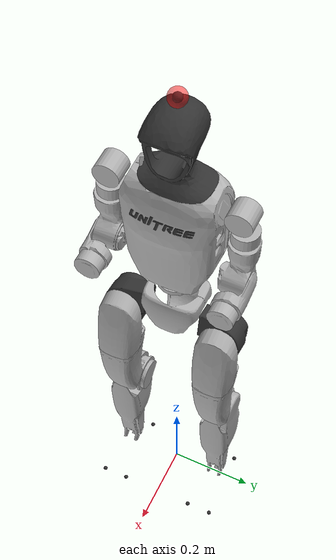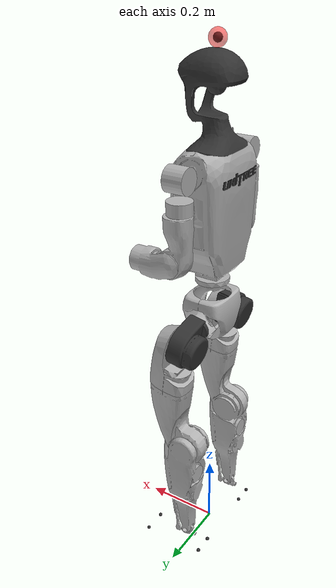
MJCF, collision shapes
<?xml version='1.0' encoding='utf-8'?>
<mujoco model="g1_12dof">
  <compiler angle="radian" meshdir="meshes/" />

  <statistic meansize="0.144785" extent="1.23314" center="0.025392 2.0634e-05 -0.245975" />
  <default>
    <joint damping="0.001" armature="0.01" frictionloss="0.1" />
  </default>

  <asset>
    <mesh name="pelvis" file="pelvis.STL" />
    <mesh name="pelvis_contour_link" file="pelvis_contour_link.STL" />
    <mesh name="left_hip_pitch_link" file="left_hip_pitch_link.STL" />
    <mesh name="left_hip_roll_link" file="left_hip_roll_link.STL" />
    <mesh name="left_hip_yaw_link" file="left_hip_yaw_link.STL" />
    <mesh name="left_knee_link" file="left_knee_link.STL" />
    <mesh name="left_ankle_pitch_link" file="left_ankle_pitch_link.STL" />
    <mesh name="left_ankle_roll_link" file="left_ankle_roll_link.STL" />
    <mesh name="right_hip_pitch_link" file="right_hip_pitch_link.STL" />
    <mesh name="right_hip_roll_link" file="right_hip_roll_link.STL" />
    <mesh name="right_hip_yaw_link" file="right_hip_yaw_link.STL" />
    <mesh name="right_knee_link" file="right_knee_link.STL" />
    <mesh name="right_ankle_pitch_link" file="right_ankle_pitch_link.STL" />
    <mesh name="right_ankle_roll_link" file="right_ankle_roll_link.STL" />
    <mesh name="torso_link_23dof_rev_1_0" file="torso_link_23dof_rev_1_0.STL" />
    <mesh name="logo_link" file="logo_link.STL" />
    <mesh name="head_link" file="head_link.STL" />
    <mesh name="left_shoulder_pitch_link" file="left_shoulder_pitch_link.STL" />
    <mesh name="left_shoulder_roll_link" file="left_shoulder_roll_link.STL" />
    <mesh name="left_shoulder_yaw_link" file="left_shoulder_yaw_link.STL" />
    <mesh name="left_elbow_link" file="left_elbow_link.STL" />
    <mesh name="right_shoulder_pitch_link" file="right_shoulder_pitch_link.STL" />
    <mesh name="right_shoulder_roll_link" file="right_shoulder_roll_link.STL" />
    <mesh name="right_shoulder_yaw_link" file="right_shoulder_yaw_link.STL" />
    <mesh name="right_elbow_link" file="right_elbow_link.STL" />
  </asset>

  <worldbody>
    <body name="pelvis" pos="0 0 0.793">
      <inertial pos="0.0144905 0.000151462 0.144068" quat="0.999881 -0.000505543 -0.0154276 0.000328408" mass="17.7349" diaginertia="0.552723 0.454092 0.211762" />
      <joint name="floating_base_joint" type="free" limited="false" actuatorfrclimited="false" />
      <geom type="mesh" contype="0" conaffinity="0" group="1" density="0" rgba="0.2 0.2 0.2 1" mesh="pelvis" />
      <geom type="mesh" contype="0" conaffinity="0" group="1" density="0" rgba="0.7 0.7 0.7 1" mesh="pelvis_contour_link" />
      <geom type="mesh" rgba="0.7 0.7 0.7 1" mesh="pelvis_contour_link" />
      <geom type="mesh" contype="0" conaffinity="0" group="1" density="0" rgba="0.7 0.7 0.7 1" mesh="torso_link_23dof_rev_1_0" />
      <geom type="mesh" rgba="0.7 0.7 0.7 1" mesh="torso_link_23dof_rev_1_0" />
      <geom type="mesh" contype="0" conaffinity="0" group="1" density="0" rgba="0.2 0.2 0.2 1" mesh="logo_link" />
      <geom type="mesh" rgba="0.2 0.2 0.2 1" mesh="logo_link" />
      <geom type="mesh" contype="0" conaffinity="0" group="1" density="0" rgba="0.2 0.2 0.2 1" mesh="head_link" />
      <geom type="mesh" rgba="0.2 0.2 0.2 1" mesh="head_link" />

      <body name="lidar_body" pos="-0.005 0 0.55" euler="0 1.5708 0">
        <site name="lidar_origin" pos="0 0 0" size="0.02" type="sphere" rgba="1 0 0 0.5" />
        <!-- 40 evenly spaced lidar beams covering full 360 degrees (9 degrees apart) -->
        <site name="lidar_beam_0" pos="0 0 0" euler="0.000000 0 0" size="0.01" />
        <site name="lidar_beam_1" pos="0 0 0" euler="0.157080 0 0" size="0.01" />
        <site name="lidar_beam_2" pos="0 0 0" euler="0.314159 0 0" size="0.01" />
        <site name="lidar_beam_3" pos="0 0 0" euler="0.471239 0 0" size="0.01" />
        <site name="lidar_beam_4" pos="0 0 0" euler="0.628319 0 0" size="0.01" />
        <site name="lidar_beam_5" pos="0 0 0" euler="0.785398 0 0" size="0.01" />
        <site name="lidar_beam_6" pos="0 0 0" euler="0.942478 0 0" size="0.01" />
        <site name="lidar_beam_7" pos="0 0 0" euler="1.099557 0 0" size="0.01" />
        <site name="lidar_beam_8" pos="0 0 0" euler="1.256637 0 0" size="0.01" />
        <site name="lidar_beam_9" pos="0 0 0" euler="1.413717 0 0" size="0.01" />
        <site name="lidar_beam_10" pos="0 0 0" euler="1.570796 0 0" size="0.01" />
        <site name="lidar_beam_11" pos="0 0 0" euler="1.727876 0 0" size="0.01" />
        <site name="lidar_beam_12" pos="0 0 0" euler="1.884956 0 0" size="0.01" />
        <site name="lidar_beam_13" pos="0 0 0" euler="2.042035 0 0" size="0.01" />
        <site name="lidar_beam_14" pos="0 0 0" euler="2.199115 0 0" size="0.01" />
        <site name="lidar_beam_15" pos="0 0 0" euler="2.356194 0 0" size="0.01" />
        <site name="lidar_beam_16" pos="0 0 0" euler="2.513274 0 0" size="0.01" />
        <site name="lidar_beam_17" pos="0 0 0" euler="2.670354 0 0" size="0.01" />
        <site name="lidar_beam_18" pos="0 0 0" euler="2.827433 0 0" size="0.01" />
        <site name="lidar_beam_19" pos="0 0 0" euler="2.984513 0 0" size="0.01" />
        <site name="lidar_beam_20" pos="0 0 0" euler="3.141593 0 0" size="0.01" />
        <site name="lidar_beam_21" pos="0 0 0" euler="3.298672 0 0" size="0.01" />
        <site name="lidar_beam_22" pos="0 0 0" euler="3.455752 0 0" size="0.01" />
        <site name="lidar_beam_23" pos="0 0 0" euler="3.612832 0 0" size="0.01" />
        <site name="lidar_beam_24" pos="0 0 0" euler="3.769911 0 0" size="0.01" />
        <site name="lidar_beam_25" pos="0 0 0" euler="3.926991 0 0" size="0.01" />
        <site name="lidar_beam_26" pos="0 0 0" euler="4.084070 0 0" size="0.01" />
        <site name="lidar_beam_27" pos="0 0 0" euler="4.241150 0 0" size="0.01" />
        <site name="lidar_beam_28" pos="0 0 0" euler="4.398230 0 0" size="0.01" />
        <site name="lidar_beam_29" pos="0 0 0" euler="4.555309 0 0" size="0.01" />
        <site name="lidar_beam_30" pos="0 0 0" euler="4.712389 0 0" size="0.01" />
        <site name="lidar_beam_31" pos="0 0 0" euler="4.869469 0 0" size="0.01" />
        <site name="lidar_beam_32" pos="0 0 0" euler="5.026548 0 0" size="0.01" />
        <site name="lidar_beam_33" pos="0 0 0" euler="5.183628 0 0" size="0.01" />
        <site name="lidar_beam_34" pos="0 0 0" euler="5.340708 0 0" size="0.01" />
        <site name="lidar_beam_35" pos="0 0 0" euler="5.497787 0 0" size="0.01" />
        <site name="lidar_beam_36" pos="0 0 0" euler="5.654867 0 0" size="0.01" />
        <site name="lidar_beam_37" pos="0 0 0" euler="5.811946 0 0" size="0.01" />
        <site name="lidar_beam_38" pos="0 0 0" euler="5.969026 0 0" size="0.01" />
        <site name="lidar_beam_39" pos="0 0 0" euler="6.126106 0 0" size="0.01" />

        <!-- Problematic lidar beams 35-39 excluded (not used in policy) - sites removed -->

      </body>

      <geom pos="-7.2e-06 0.10022 0.29178" quat="0.990264 0.139201 1.38722e-05 -9.86868e-05" type="mesh" contype="0" conaffinity="0" group="1" density="0" rgba="0.7 0.7 0.7 1" mesh="left_shoulder_pitch_link"/>
      <geom size="0.03 0.025" pos="7.72569e-07 0.141427 0.293195" quat="0.700213 0.0985001 0.700232 0.0983605" type="cylinder" rgba="0.7 0.7 0.7 1"/>
      <geom pos="3.73942e-07 0.14056 0.288961" quat="1 3.00026e-05 2.74716e-05 -9.57958e-05" type="mesh" contype="0" conaffinity="0" group="1" density="0" rgba="0.7 0.7 0.7 1" mesh="left_shoulder_roll_link"/>
      <geom size="0.03 0.015" pos="-0.00400139 0.146564 0.235962" quat="1 3.00026e-05 2.74716e-05 -9.57958e-05" type="cylinder" rgba="0.7 0.7 0.7 1"/>
      <geom pos="-4.10007e-06 0.146807 0.185762" quat="1 3.00026e-05 2.74716e-05 -9.57958e-05" type="mesh" contype="0" conaffinity="0" group="1" density="0" rgba="0.7 0.7 0.7 1" mesh="left_shoulder_yaw_link"/>
      <geom pos="-4.10007e-06 0.146807 0.185762" quat="1 3.00026e-05 2.74716e-05 -9.57958e-05" type="mesh" rgba="0.7 0.7 0.7 1" mesh="left_shoulder_yaw_link"/>
      <geom pos="0.0157745 0.146808 0.105243" quat="1 3.00026e-05 2.74716e-05 -9.57958e-05" type="mesh" contype="0" conaffinity="0" group="1" density="0" rgba="0.7 0.7 0.7 1" mesh="left_elbow_link"/>
      <geom pos="0.0157745 0.146808 0.105243" quat="1 3.00026e-05 2.74716e-05 -9.57958e-05" type="mesh" rgba="0.7 0.7 0.7 1" mesh="left_elbow_link"/>
      <geom pos="-7.2e-06 -0.10021 0.29178" quat="0.990264 -0.139201 1.38722e-05 9.86868e-05" type="mesh" contype="0" conaffinity="0" group="1" density="0" rgba="0.7 0.7 0.7 1" mesh="right_shoulder_pitch_link"/>
      <geom size="0.03 0.025" pos="7.72569e-07 -0.141417 0.293195" quat="0.700213 -0.0985001 0.700232 -0.0983605" type="cylinder" rgba="0.7 0.7 0.7 1"/>
      <geom pos="3.73942e-07 -0.14055 0.288961" quat="1 -3.00026e-05 2.74716e-05 9.57958e-05" type="mesh" contype="0" conaffinity="0" group="1" density="0" rgba="0.7 0.7 0.7 1" mesh="right_shoulder_roll_link"/>
      <geom size="0.03 0.015" pos="-0.00400139 -0.146554 0.235962" quat="1 -3.00026e-05 2.74716e-05 9.57958e-05" type="cylinder" rgba="0.7 0.7 0.7 1"/>
      <geom pos="-4.10007e-06 -0.146797 0.185762" quat="1 -3.00026e-05 2.74716e-05 9.57958e-05" type="mesh" contype="0" conaffinity="0" group="1" density="0" rgba="0.7 0.7 0.7 1" mesh="right_shoulder_yaw_link"/>
      <geom pos="-4.10007e-06 -0.146797 0.185762" quat="1 -3.00026e-05 2.74716e-05 9.57958e-05" type="mesh" rgba="0.7 0.7 0.7 1" mesh="right_shoulder_yaw_link"/>
      <geom pos="0.0157745 -0.146798 0.105243" quat="1 -3.00026e-05 2.74716e-05 9.57958e-05" type="mesh" contype="0" conaffinity="0" group="1" density="0" rgba="0.7 0.7 0.7 1" mesh="right_elbow_link"/>
      <geom pos="0.0157745 -0.146798 0.105243" quat="1 -3.00026e-05 2.74716e-05 9.57958e-05" type="mesh" rgba="0.7 0.7 0.7 1" mesh="right_elbow_link"/>
      <body name="left_hip_pitch_link" pos="0 0.064452 -0.1027">
        <inertial pos="0.002741 0.047791 -0.02606" quat="0.954862 0.293964 0.0302556 0.030122" mass="1.35" diaginertia="0.00181517 0.00153422 0.00116212"/>
        <joint name="left_hip_pitch_joint" pos="0 0 0" axis="0 1 0" range="-2.5307 2.8798" actuatorfrcrange="-88 88"/>
        <geom type="mesh" contype="0" conaffinity="0" group="1" density="0" rgba="0.2 0.2 0.2 1" mesh="left_hip_pitch_link"/>
        <geom type="mesh" rgba="0.2 0.2 0.2 1" mesh="left_hip_pitch_link"/>
        <body name="left_hip_roll_link" pos="0 0.052 -0.030465" quat="0.996179 0 -0.0873386 0">
          <inertial pos="0.029812 -0.001045 -0.087934" quat="0.977808 -1.97119e-05 0.205576 -0.0403793" mass="1.52" diaginertia="0.00254986 0.00241169 0.00148755"/>
          <joint name="left_hip_roll_joint" pos="0 0 0" axis="1 0 0" range="-0.5236 2.9671" actuatorfrcrange="-139 139"/>
          <geom type="mesh" contype="0" conaffinity="0" group="1" density="0" rgba="0.7 0.7 0.7 1" mesh="left_hip_roll_link"/>
          <geom type="mesh" rgba="0.7 0.7 0.7 1" mesh="left_hip_roll_link"/>
          <body name="left_hip_yaw_link" pos="0.025001 0 -0.12412">
            <inertial pos="-0.057709 -0.010981 -0.15078" quat="0.600598 0.15832 0.223482 0.751181" mass="1.702" diaginertia="0.00776166 0.00717575 0.00160139"/>
            <joint name="left_hip_yaw_joint" pos="0 0 0" axis="0 0 1" range="-2.7576 2.7576" actuatorfrcrange="-88 88"/>
            <geom type="mesh" contype="0" conaffinity="0" group="1" density="0" rgba="0.7 0.7 0.7 1" mesh="left_hip_yaw_link"/>
            <geom type="mesh" rgba="0.7 0.7 0.7 1" mesh="left_hip_yaw_link"/>
            <body name="left_knee_link" pos="-0.078273 0.0021489 -0.17734" quat="0.996179 0 0.0873386 0">
              <inertial pos="0.005457 0.003964 -0.12074" quat="0.923418 -0.0327699 0.0158246 0.382067" mass="1.932" diaginertia="0.0113804 0.0112778 0.00146458"/>
              <joint name="left_knee_joint" pos="0 0 0" axis="0 1 0" range="-0.087267 2.8798" actuatorfrcrange="-139 139"/>
              <geom type="mesh" contype="0" conaffinity="0" group="1" density="0" rgba="0.7 0.7 0.7 1" mesh="left_knee_link"/>
              <geom type="mesh" rgba="0.7 0.7 0.7 1" mesh="left_knee_link"/>
              <body name="left_ankle_pitch_link" pos="0 -9.4445e-05 -0.30001">
                <inertial pos="-0.007269 0 0.011137" quat="0.603053 0.369225 0.369225 0.603053" mass="0.074" diaginertia="1.89e-05 1.40805e-05 6.9195e-06"/>
                <joint name="left_ankle_pitch_joint" pos="0 0 0" axis="0 1 0" range="-0.87267 0.5236" actuatorfrcrange="-50 50"/>
                <geom type="mesh" contype="0" conaffinity="0" group="1" density="0" rgba="0.7 0.7 0.7 1" mesh="left_ankle_pitch_link"/>
                <geom type="mesh" rgba="0.7 0.7 0.7 1" mesh="left_ankle_pitch_link"/>
                <body name="left_ankle_roll_link" pos="0 0 -0.017558">
                  <inertial pos="0.026505 0 -0.016425" quat="-0.000481092 0.728482 -0.000618967 0.685065" mass="0.608" diaginertia="0.00167218 0.0016161 0.000217621"/>
                  <joint name="left_ankle_roll_joint" pos="0 0 0" axis="1 0 0" range="-0.2618 0.2618" actuatorfrcrange="-50 50"/>
                  <geom type="mesh" contype="0" conaffinity="0" group="1" density="0" rgba="0.2 0.2 0.2 1" mesh="left_ankle_roll_link"/>
                  <geom size="0.005" pos="-0.05 0.025 -0.03" rgba="0.2 0.2 0.2 1"/>
                  <geom size="0.005" pos="-0.05 -0.025 -0.03" rgba="0.2 0.2 0.2 1"/>
                  <geom size="0.005" pos="0.12 0.03 -0.03" rgba="0.2 0.2 0.2 1"/>
                  <geom size="0.005" pos="0.12 -0.03 -0.03" rgba="0.2 0.2 0.2 1"/>
                </body>
              </body>
            </body>
          </body>
        </body>
      </body>
      <body name="right_hip_pitch_link" pos="0 -0.064452 -0.1027">
        <inertial pos="0.002741 -0.047791 -0.02606" quat="0.954862 -0.293964 0.0302556 -0.030122" mass="1.35" diaginertia="0.00181517 0.00153422 0.00116212" />
        <joint name="right_hip_pitch_joint" pos="0 0 0" axis="0 1 0" range="-2.5307 2.8798" actuatorfrcrange="-88 88" />
        <geom type="mesh" contype="0" conaffinity="0" group="1" density="0" rgba="0.2 0.2 0.2 1" mesh="right_hip_pitch_link" />
        <geom type="mesh" rgba="0.2 0.2 0.2 1" mesh="right_hip_pitch_link" />
        <body name="right_hip_roll_link" pos="0 -0.052 -0.030465" quat="0.996179 0 -0.0873386 0">
          <inertial pos="0.029812 0.001045 -0.087934" quat="0.977808 1.97119e-05 0.205576 0.0403793" mass="1.52" diaginertia="0.00254986 0.00241169 0.00148755" />
          <joint name="right_hip_roll_joint" pos="0 0 0" axis="1 0 0" range="-2.9671 0.5236" actuatorfrcrange="-139 139" />
          <geom type="mesh" contype="0" conaffinity="0" group="1" density="0" rgba="0.7 0.7 0.7 1" mesh="right_hip_roll_link" />
          <geom type="mesh" rgba="0.7 0.7 0.7 1" mesh="right_hip_roll_link" />
          <body name="right_hip_yaw_link" pos="0.025001 0 -0.12412">
            <inertial pos="-0.057709 0.010981 -0.15078" quat="0.751181 0.223482 0.15832 0.600598" mass="1.702" diaginertia="0.00776166 0.00717575 0.00160139" />
            <joint name="right_hip_yaw_joint" pos="0 0 0" axis="0 0 1" range="-2.7576 2.7576" actuatorfrcrange="-88 88" />
            <geom type="mesh" contype="0" conaffinity="0" group="1" density="0" rgba="0.7 0.7 0.7 1" mesh="right_hip_yaw_link" />
            <geom type="mesh" rgba="0.7 0.7 0.7 1" mesh="right_hip_yaw_link" />
            <body name="right_knee_link" pos="-0.078273 -0.0021489 -0.17734" quat="0.996179 0 0.0873386 0">
              <inertial pos="0.005457 -0.003964 -0.12074" quat="0.923439 0.0345276 0.0116333 -0.382012" mass="1.932" diaginertia="0.011374 0.0112843 0.00146452" />
              <joint name="right_knee_joint" pos="0 0 0" axis="0 1 0" range="-0.087267 2.8798" actuatorfrcrange="-139 139" />
              <geom type="mesh" contype="0" conaffinity="0" group="1" density="0" rgba="0.7 0.7 0.7 1" mesh="right_knee_link" />
              <geom type="mesh" rgba="0.7 0.7 0.7 1" mesh="right_knee_link" />
              <body name="right_ankle_pitch_link" pos="0 9.4445e-05 -0.30001">
                <inertial pos="-0.007269 0 0.011137" quat="0.603053 0.369225 0.369225 0.603053" mass="0.074" diaginertia="1.89e-05 1.40805e-05 6.9195e-06" />
                <joint name="right_ankle_pitch_joint" pos="0 0 0" axis="0 1 0" range="-0.87267 0.5236" actuatorfrcrange="-50 50" />
                <geom type="mesh" contype="0" conaffinity="0" group="1" density="0" rgba="0.7 0.7 0.7 1" mesh="right_ankle_pitch_link" />
                <geom type="mesh" rgba="0.7 0.7 0.7 1" mesh="right_ankle_pitch_link" />
                <body name="right_ankle_roll_link" pos="0 0 -0.017558">
                  <inertial pos="0.026505 0 -0.016425" quat="0.000481092 0.728482 0.000618967 0.685065" mass="0.608" diaginertia="0.00167218 0.0016161 0.000217621" />
                  <joint name="right_ankle_roll_joint" pos="0 0 0" axis="1 0 0" range="-0.2618 0.2618" actuatorfrcrange="-50 50" />
                  <geom type="mesh" contype="0" conaffinity="0" group="1" density="0" rgba="0.2 0.2 0.2 1" mesh="right_ankle_roll_link" />
                  <geom size="0.005" pos="-0.05 0.025 -0.03" rgba="0.2 0.2 0.2 1" />
                  <geom size="0.005" pos="-0.05 -0.025 -0.03" rgba="0.2 0.2 0.2 1" />
                  <geom size="0.005" pos="0.12 0.03 -0.03" rgba="0.2 0.2 0.2 1" />
                  <geom size="0.005" pos="0.12 -0.03 -0.03" rgba="0.2 0.2 0.2 1" />
                </body>
              </body>
            </body>
          </body>
        </body>
      </body>
    </body>
  </worldbody>
  <actuator>
    <motor name="left_hip_pitch_joint" joint="left_hip_pitch_joint" />
    <motor name="left_hip_roll_joint" joint="left_hip_roll_joint" />
    <motor name="left_hip_yaw_joint" joint="left_hip_yaw_joint" />
    <motor name="left_knee_joint" joint="left_knee_joint" />
    <motor name="left_ankle_pitch_joint" joint="left_ankle_pitch_joint" />
    <motor name="left_ankle_roll_joint" joint="left_ankle_roll_joint" />
    <motor name="right_hip_pitch_joint" joint="right_hip_pitch_joint" />
    <motor name="right_hip_roll_joint" joint="right_hip_roll_joint" />
    <motor name="right_hip_yaw_joint" joint="right_hip_yaw_joint" />
    <motor name="right_knee_joint" joint="right_knee_joint" />
    <motor name="right_ankle_pitch_joint" joint="right_ankle_pitch_joint" />
    <motor name="right_ankle_roll_joint" joint="right_ankle_roll_joint" />
  </actuator>

  <sensor>

    <!-- 40 evenly spaced lidar rangefinders covering full 360 degrees -->
    <rangefinder name="lidar_0" site="lidar_beam_0" cutoff="3.0" />
    <rangefinder name="lidar_1" site="lidar_beam_1" cutoff="3.0" />
    <rangefinder name="lidar_2" site="lidar_beam_2" cutoff="3.0" />
    <rangefinder name="lidar_3" site="lidar_beam_3" cutoff="3.0" />
    <rangefinder name="lidar_4" site="lidar_beam_4" cutoff="3.0" />
    <rangefinder name="lidar_5" site="lidar_beam_5" cutoff="3.0" />
    <rangefinder name="lidar_6" site="lidar_beam_6" cutoff="3.0" />
    <rangefinder name="lidar_7" site="lidar_beam_7" cutoff="3.0" />
    <rangefinder name="lidar_8" site="lidar_beam_8" cutoff="3.0" />
    <rangefinder name="lidar_9" site="lidar_beam_9" cutoff="3.0" />
    <rangefinder name="lidar_10" site="lidar_beam_10" cutoff="3.0" />
    <rangefinder name="lidar_11" site="lidar_beam_11" cutoff="3.0" />
    <rangefinder name="lidar_12" site="lidar_beam_12" cutoff="3.0" />
    <rangefinder name="lidar_13" site="lidar_beam_13" cutoff="3.0" />
    <rangefinder name="lidar_14" site="lidar_beam_14" cutoff="3.0" />
    <rangefinder name="lidar_15" site="lidar_beam_15" cutoff="3.0" />
    <rangefinder name="lidar_16" site="lidar_beam_16" cutoff="3.0" />
    <rangefinder name="lidar_17" site="lidar_beam_17" cutoff="3.0" />
    <rangefinder name="lidar_18" site="lidar_beam_18" cutoff="3.0" />
    <rangefinder name="lidar_19" site="lidar_beam_19" cutoff="3.0" />
    <rangefinder name="lidar_20" site="lidar_beam_20" cutoff="3.0" />
    <rangefinder name="lidar_21" site="lidar_beam_21" cutoff="3.0" />
    <rangefinder name="lidar_22" site="lidar_beam_22" cutoff="3.0" />
    <rangefinder name="lidar_23" site="lidar_beam_23" cutoff="3.0" />
    <rangefinder name="lidar_24" site="lidar_beam_24" cutoff="3.0" />
    <rangefinder name="lidar_25" site="lidar_beam_25" cutoff="3.0" />
    <rangefinder name="lidar_26" site="lidar_beam_26" cutoff="3.0" />
    <rangefinder name="lidar_27" site="lidar_beam_27" cutoff="3.0" />
    <rangefinder name="lidar_28" site="lidar_beam_28" cutoff="3.0" />
    <rangefinder name="lidar_29" site="lidar_beam_29" cutoff="3.0" />
    <rangefinder name="lidar_30" site="lidar_beam_30" cutoff="3.0" />
    <rangefinder name="lidar_31" site="lidar_beam_31" cutoff="3.0" />
    <rangefinder name="lidar_32" site="lidar_beam_32" cutoff="3.0" />
    <rangefinder name="lidar_33" site="lidar_beam_33" cutoff="3.0" />
    <rangefinder name="lidar_34" site="lidar_beam_34" cutoff="3.0" />
    <rangefinder name="lidar_35" site="lidar_beam_35" cutoff="3.0" />
    <rangefinder name="lidar_36" site="lidar_beam_36" cutoff="3.0" />
    <rangefinder name="lidar_37" site="lidar_beam_37" cutoff="3.0" />
    <rangefinder name="lidar_38" site="lidar_beam_38" cutoff="3.0" />
    <rangefinder name="lidar_39" site="lidar_beam_39" cutoff="3.0" />
  </sensor>
</mujoco>
